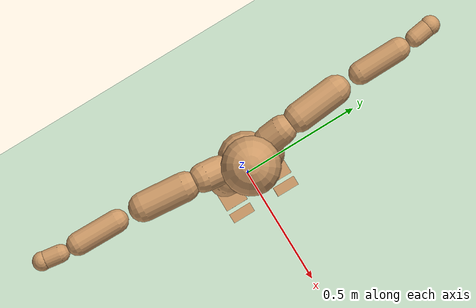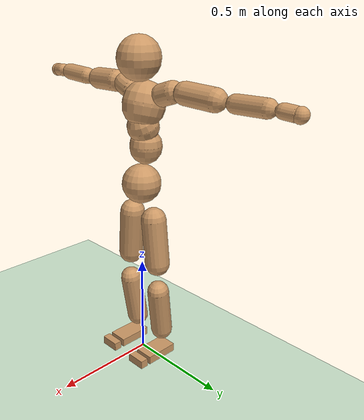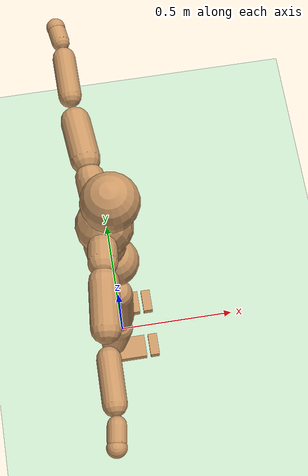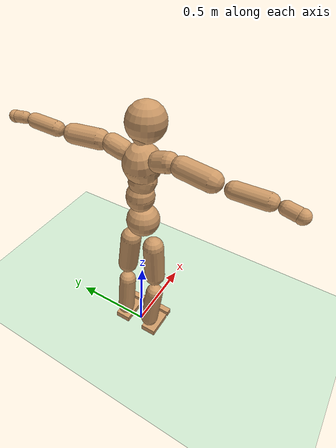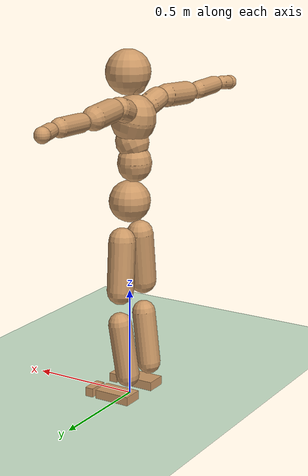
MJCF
<mujoco model="humanoid">
  <compiler coordinate="local" inertiafromgeom="true" angle="degree"/>
  <statistic extent="2" center="0 0 1"/>
  <option timestep="0.003"/>

  <custom>
        <numeric data="2500" name="constraint_limit_stiffness"/>
        <numeric data="27000" name="constraint_stiffness"/>
        <numeric data="30" name="constraint_ang_damping"/>
        <numeric data="80" name="constraint_vel_damping"/>
        <numeric data="-0.05" name="ang_damping"/>
        <numeric data="0.5" name="joint_scale_pos"/>
        <numeric data="0.1" name="joint_scale_ang"/>
        <numeric data="0" name="spring_mass_scale"/>
        <numeric data="1" name="spring_inertia_scale"/>
        <numeric data="10" name="matrix_inv_iterations"/>
        <numeric data="15" name="solver_maxls"/>
    </custom>

  <default>
    <geom condim="3" material="geom" friction="1.0 0.05 0.05" solimp=".9 .99 .003" solref=".02 1" density="1000"/>
    <joint type="hinge" damping="6" stiffness="10" armature=".007" limited="true" solimplimit="0 .99 .01"/>
    <site size=".04" group="3"/>
    <default class="force-torque">
      <site type="box" size=".01 .01 .02" rgba="1 0 0 1"/>
    </default>
    <default class="touch">
      <site type="capsule" rgba="0 0 1 .3"/>
    </default>
  </default>
  <asset>
    <texture type="skybox" builtin="gradient" rgb1=".4 .5 .6" rgb2="0 0 0" width="100" height="100"/>
    <texture builtin="flat" height="1278" mark="cross" markrgb="1 1 1" name="texgeom" random="0.01" rgb1="0.8 0.6 0.4" rgb2="0.8 0.6 0.4" type="cube" width="127"/>
    <texture builtin="checker" height="100" name="texplane" rgb1="0 0 0" rgb2="0.8 0.8 0.8" type="2d" width="100"/>
    <material name="MatPlane" reflectance="0.5" shininess="1" specular="1" texrepeat="60 60" texture="texplane"/>
    <material name="geom" texture="texgeom" texuniform="true"/>
  </asset>
  <worldbody>
    <light cutoff="100" diffuse="1 1 1" dir="0 0 -0.1" directional="true" exponent="1" pos="0 0 10" specular=".1 .1 .1"/>
    <geom conaffinity="1" condim="3" name="floor" pos="0 0 0" rgba="0.8 0.9 0.8 1" size="100 100 .2" type="plane" material="MatPlane"/>
    <body name="Pelvis" pos="0 0 0.920">
      <freejoint name="Pelvis"/>
      <geom type="sphere" size="0.0942" pos="0.0000 0.0000 0.0000" contype="1" conaffinity="0"/>
      <body name="L_Hip" pos="-0.00555 0.0686 -0.09095">
        <joint name="L_Hip_x" type="hinge" pos="0 0 0" axis="1 0 0" armature="0.02" range="-90.0000 90.0000" stiffness="100"/>
        <joint name="L_Hip_y" type="hinge" pos="0 0 0" axis="0 1 0" armature="0.02" range="-90.0000 90.0000" stiffness="100"/>
        <joint name="L_Hip_z" type="hinge" pos="0 0 0" axis="0 0 1" armature="0.02" range="-90.0000 90.0000" stiffness="100"/>
        <geom type="capsule" fromto="-0.00135 0.0073 -0.07575 -0.00535 0.029 -0.30315" size="0.06105" contype="1" conaffinity="0"/>
        <body name="L_Knee" pos="-0.0067 0.0363 -0.3789">
          <joint name="L_Knee_x" type="hinge" pos="0 0 0" axis="1 0 0" armature="0.02" range="-5.6250 5.6250" stiffness="100"/>
          <joint name="L_Knee_y" type="hinge" pos="0 0 0" axis="0 1 0" armature="0.02" range="0.0000 180.0000" stiffness="100"/>
          <joint name="L_Knee_z" type="hinge" pos="0 0 0" axis="0 0 1" armature="0.02" range="-5.6250 5.6250" stiffness="100"/>
          <geom type="capsule" fromto="0.0001 -0.00295 -0.07965 -0.0344 -0.01175 -0.31855" size="0.0541" contype="1" conaffinity="0"/>
          <body name="L_Ankle" pos="-0.043 -0.0147 -0.3982">
            <joint name="L_Ankle_x" type="hinge" pos="0 0 0" axis="1 0 0" armature="0.02" range="-45.0000 45.0000" stiffness="100"/>
            <joint name="L_Ankle_y" type="hinge" pos="0 0 0" axis="0 1 0" armature="0.02" range="-90.0000 90.0000" stiffness="100"/>
            <joint name="L_Ankle_z" type="hinge" pos="0 0 0" axis="0 0 1" armature="0.02" range="-45.0000 45.0000" stiffness="100"/>
            <geom type="box" pos="0.06065 0.01295 -0.0260" size="0.08575 0.0483 0.0208" quat="1.0000 0.0000 0.0000 0.0000" contype="1" conaffinity="0"/>
            <body name="L_Toe" pos="0.1213 0.0259 -0.05195">
              <joint name="L_Toe_x" type="hinge" pos="0 0 0" axis="1 0 0" armature="0.02" range="-180.0000 180.0000" stiffness="100"/>
              <joint name="L_Toe_y" type="hinge" pos="0 0 0" axis="0 1 0" armature="0.02" range="-180.0000 180.0000" stiffness="100"/>
              <joint name="L_Toe_z" type="hinge" pos="0 0 0" axis="0 0 1" armature="0.02" range="-180.0000 180.0000" stiffness="100"/>
              <geom type="box" pos="0.06165 -0.01295 0.02595" size="0.01985 0.04785 0.0208" quat="1.0000 0.0000 0.0000 0.0000" contype="1" conaffinity="0"/>
            </body>
          </body>
        </body>
      </body>
      <body name="R_Hip" pos="-0.00555 -0.0686 -0.09095">
        <joint name="R_Hip_x" type="hinge" pos="0 0 0" axis="1 0 0" armature="0.02" range="-90.0000 90.0000" stiffness="100"/>
        <joint name="R_Hip_y" type="hinge" pos="0 0 0" axis="0 1 0" armature="0.02" range="-90.0000 90.0000" stiffness="100"/>
        <joint name="R_Hip_z" type="hinge" pos="0 0 0" axis="0 0 1" armature="0.02" range="-90.0000 90.0000" stiffness="100"/>
        <geom type="capsule" fromto="-0.00135 -0.0073 -0.07575 -0.00535 -0.029 -0.30315" size="0.06105" contype="1" conaffinity="0"/>
        <body name="R_Knee" pos="-0.0067 -0.0363 -0.3789">
          <joint name="R_Knee_x" type="hinge" pos="0 0 0" axis="1 0 0" armature="0.02" range="-5.6250 5.6250" stiffness="100"/>
          <joint name="R_Knee_y" type="hinge" pos="0 0 0" axis="0 1 0" armature="0.02" range="0.0000 180.0000" stiffness="100"/>
          <joint name="R_Knee_z" type="hinge" pos="0 0 0" axis="0 0 1" armature="0.02" range="-5.6250 5.6250" stiffness="100"/>
          <geom type="capsule" fromto="0.0001 0.00295 -0.07965 -0.0344 0.01175 -0.31855" size="0.0541" contype="1" conaffinity="0"/>
          <body name="R_Ankle" pos="-0.043 0.0147 -0.3982">
            <joint name="R_Ankle_x" type="hinge" pos="0 0 0" axis="1 0 0" armature="0.02" range="-45.0000 45.0000" stiffness="100"/>
            <joint name="R_Ankle_y" type="hinge" pos="0 0 0" axis="0 1 0" armature="0.02" range="-90.0000 90.0000" stiffness="100"/>
            <joint name="R_Ankle_z" type="hinge" pos="0 0 0" axis="0 0 1" armature="0.02" range="-45.0000 45.0000" stiffness="100"/>
            <geom type="box" pos="0.06065 -0.01295 -0.0260" size="0.08575 0.0483 0.0208" quat="1.0000 0.0000 0.0000 0.0000" contype="1" conaffinity="0"/>
            <body name="R_Toe" pos="0.1213 -0.0259 -0.05195">
              <joint name="R_Toe_x" type="hinge" pos="0 0 0" axis="1 0 0" armature="0.02" range="-180.0000 180.0000" stiffness="100"/>
              <joint name="R_Toe_y" type="hinge" pos="0 0 0" axis="0 1 0" armature="0.02" range="-180.0000 180.0000" stiffness="100"/>
              <joint name="R_Toe_z" type="hinge" pos="0 0 0" axis="0 0 1" armature="0.02" range="-180.0000 180.0000" stiffness="100"/>
              <geom type="box" pos="0.06165 0.01295 0.02595" size="0.01985 0.04785 0.0208" quat="1.0000 0.0000 0.0000 0.0000" contype="1" conaffinity="0"/>
            </body>
          </body>
        </body>
      </body>
      <body name="Torso" pos="-0.0267 0.0 0.109">
        <camera name="track" mode="trackcom" pos="0 -4 0" xyaxes="1 0 0 0 0 1"/>
        <camera name="track2" mode="trackcom" pos="4 0 0" xyaxes="0 1 0 0 0 1"/>
        <joint name="Torso_x" type="hinge" pos="0 0 0" axis="1 0 0" armature="0.02" range="-60.0000 60.0000" damping="10" stiffness="500"/>
        <joint name="Torso_y" type="hinge" pos="0 0 0" axis="0 1 0" armature="0.02" range="-60.0000 60.0000" damping="10" stiffness="500"/>
        <joint name="Torso_z" type="hinge" pos="0 0 0" axis="0 0 1" armature="0.02" range="-60.0000 60.0000" damping="10" stiffness="500"/>
        <geom type="capsule" fromto="0.0 0.0025 0.0608 0.0 0.003 0.0743" size="0.0769" contype="1" conaffinity="0"/>
        <body name="Spine" pos="0.0011 0.0 0.1352">
          <joint name="Spine_x" type="hinge" pos="0 0 0" axis="1 0 0" armature="0.02" range="-60.0000 60.0000" stiffness="500"/>
          <joint name="Spine_y" type="hinge" pos="0 0 0" axis="0 1 0" armature="0.02" range="-60.0000 60.0000" stiffness="500"/>
          <joint name="Spine_z" type="hinge" pos="0 0 0" axis="0 0 1" armature="0.02" range="-60.0000 60.0000" stiffness="500"/>
          <geom type="capsule" fromto="0.0114 0.0 0.0238 0.014 0.0 0.0291" size="0.0755" contype="1" conaffinity="0"/>
          <body name="Chest" pos="0.0254 0.0 0.0529">
            <joint name="Chest_x" type="hinge" pos="0 0 0" axis="1 0 0" armature="0.02" range="-60.0000 60.0000" stiffness="500"/>
            <joint name="Chest_y" type="hinge" pos="0 0 0" axis="0 1 0" armature="0.02" range="-60.0000 60.0000" stiffness="500"/>
            <joint name="Chest_z" type="hinge" pos="0 0 0" axis="0 0 1" armature="0.02" range="-60.0000 60.0000" stiffness="500"/>
            <geom type="capsule" fromto="-0.0173 0.0 0.0682 -0.0212 0.0 0.0833" size="0.1002" contype="1" conaffinity="0"/>
            <body name="Neck" pos="-0.0429 0.0 0.2139">
              <joint name="Neck_x" type="hinge" pos="0 0 0" axis="1 0 0" armature="0.02" range="-5.6250 5.6250" stiffness="100"/>
              <joint name="Neck_y" type="hinge" pos="0 0 0" axis="0 1 0" armature="0.02" range="-90.0000 90.0000" stiffness="100"/>
              <joint name="Neck_z" type="hinge" pos="0 0 0" axis="0 0 1" armature="0.02" range="-90.0000 90.0000" stiffness="100"/>
              <geom type="capsule" fromto="0.0103 0.0 0.013 0.0411 0.0 0.052" size="0.0436" contype="1" conaffinity="0"/>
              <body name="Head" pos="0.0513 0.0 0.065">
                <joint name="Head_x" type="hinge" pos="0 0 0" axis="1 0 0" armature="0.02" range="-5.6250 5.6250" stiffness="100"/>
                <joint name="Head_y" type="hinge" pos="0 0 0" axis="0 1 0" armature="0.02" range="-90.0000 90.0000" stiffness="100"/>
                <joint name="Head_z" type="hinge" pos="0 0 0" axis="0 0 1" armature="0.02" range="-90.0000 90.0000" stiffness="100"/>
                <geom type="sphere" size="0.1011" pos="0.0000 0.0000 0.0000" contype="1" conaffinity="0"/>
              </body>
            </body>
            <body name="L_Thorax" pos="-0.03635 0.0803 0.12025">
              <joint name="L_Thorax_x" type="hinge" pos="0 0 0" axis="1 0 0" armature="0.02" range="-5.6250 5.6250" stiffness="100"/>
              <joint name="L_Thorax_y" type="hinge" pos="0 0 0" axis="0 1 0" armature="0.02" range="-5.6250 5.6250" stiffness="100"/>
              <joint name="L_Thorax_z" type="hinge" pos="0 0 0" axis="0 0 1" armature="0.02" range="-5.6250 5.6250" stiffness="100"/>
              <geom type="capsule" fromto="-0.0018 0.0187 0.0063 -0.0072 0.0748 0.0252" size="0.0516" contype="1" conaffinity="0"/>
              <body name="L_Shoulder" pos="-0.009 0.0935 0.03155">
                <joint name="L_Shoulder_x" type="hinge" pos="0 0 0" axis="1 0 0" armature="0.02" range="-720.0000 720.0000" stiffness="100"/>
                <joint name="L_Shoulder_y" type="hinge" pos="0 0 0" axis="0 1 0" armature="0.02" range="-720.0000 720.0000" stiffness="100"/>
                <joint name="L_Shoulder_z" type="hinge" pos="0 0 0" axis="0 0 1" armature="0.02" range="-720.0000 720.0000" stiffness="100"/>
                <geom type="capsule" fromto="-0.0049 0.0513 -0.00265 -0.01955 0.20535 -0.01045" size="0.0524" contype="1" conaffinity="0"/>
                <body name="L_Elbow" pos="-0.02445 0.25665 -0.01305">
                  <joint name="L_Elbow_x" type="hinge" pos="0 0 0" axis="1 0 0" armature="0.02" range="-5.6250 5.6250" stiffness="100"/>
                  <joint name="L_Elbow_y" type="hinge" pos="0 0 0" axis="0 1 0" armature="0.02" range="-5.6250 5.6250" stiffness="100"/>
                  <joint name="L_Elbow_z" type="hinge" pos="0 0 0" axis="0 0 1" armature="0.02" range="-180.0000 0.0000" stiffness="100"/>
                  <geom type="capsule" fromto="-0.00065 0.05045 0.0017 -0.00265 0.2018 0.0067" size="0.04065" contype="1" conaffinity="0"/>
                  <body name="L_Wrist" pos="-0.0034 0.25225 0.0084">
                    <joint name="L_Wrist_x" type="hinge" pos="0 0 0" axis="1 0 0" armature="0.02" range="-180.0000 180.0000" stiffness="100"/>
                    <joint name="L_Wrist_y" type="hinge" pos="0 0 0" axis="0 1 0" armature="0.02" range="-180.0000 180.0000" stiffness="100"/>
                    <joint name="L_Wrist_z" type="hinge" pos="0 0 0" axis="0 0 1" armature="0.02" range="-180.0000 180.0000" stiffness="100"/>
                    <geom type="capsule" fromto="-0.00255 0.01685 -0.0014 -0.01015 0.06745 -0.0057" size="0.0322" contype="1" conaffinity="0"/>
                    <body name="L_Hand" pos="-0.0126 0.0843 -0.00715">
                      <joint name="L_Hand_x" type="hinge" pos="0 0 0" axis="1 0 0" armature="0.02" range="-180.0000 180.0000" stiffness="100"/>
                      <joint name="L_Hand_y" type="hinge" pos="0 0 0" axis="0 1 0" armature="0.02" range="-180.0000 180.0000" stiffness="100"/>
                      <joint name="L_Hand_z" type="hinge" pos="0 0 0" axis="0 0 1" armature="0.02" range="-180.0000 180.0000" stiffness="100"/>
                      <geom type="sphere" size="0.03385" pos="0.0000 0.0000 0.0000" contype="1" conaffinity="0"/>
                    </body>
                  </body>
                </body>
              </body>
            </body>
            <body name="R_Thorax" pos="-0.03635 -0.0803 0.12025">
              <joint name="R_Thorax_x" type="hinge" pos="0 0 0" axis="1 0 0" armature="0.02" range="-5.6250 5.6250" stiffness="100"/>
              <joint name="R_Thorax_y" type="hinge" pos="0 0 0" axis="0 1 0" armature="0.02" range="-5.6250 5.6250" stiffness="100"/>
              <joint name="R_Thorax_z" type="hinge" pos="0 0 0" axis="0 0 1" armature="0.02" range="-5.6250 5.6250" stiffness="100"/>
              <geom type="capsule" fromto="-0.0018 -0.0187 0.0063 -0.0072 -0.0748 0.0252" size="0.0516" contype="1" conaffinity="0"/>
              <body name="R_Shoulder" pos="-0.009 -0.0935 0.03155">
                <joint name="R_Shoulder_x" type="hinge" pos="0 0 0" axis="1 0 0" armature="0.02" range="-720.0000 720.0000" stiffness="100"/>
                <joint name="R_Shoulder_y" type="hinge" pos="0 0 0" axis="0 1 0" armature="0.02" range="-720.0000 720.0000" stiffness="100"/>
                <joint name="R_Shoulder_z" type="hinge" pos="0 0 0" axis="0 0 1" armature="0.02" range="-720.0000 720.0000" stiffness="100"/>
                <geom type="capsule" fromto="-0.0049 -0.0513 -0.00265 -0.01955 -0.20535 -0.01045" size="0.0524" contype="1" conaffinity="0"/>
                <body name="R_Elbow" pos="-0.02445 -0.25665 -0.01305">
                  <joint name="R_Elbow_x" type="hinge" pos="0 0 0" axis="1 0 0" armature="0.02" range="-5.6250 5.6250" stiffness="100"/>
                  <joint name="R_Elbow_y" type="hinge" pos="0 0 0" axis="0 1 0" armature="0.02" range="-5.6250 5.6250" stiffness="100"/>
                  <joint name="R_Elbow_z" type="hinge" pos="0 0 0" axis="0 0 1" armature="0.02" range="0.0000 180.0000" stiffness="100"/>
                  <geom type="capsule" fromto="-0.00065 -0.05045 0.0017 -0.00265 -0.2018 0.0067" size="0.04065" contype="1" conaffinity="0"/>
                  <body name="R_Wrist" pos="-0.0034 -0.25225 0.0084">
                    <joint name="R_Wrist_x" type="hinge" pos="0 0 0" axis="1 0 0" armature="0.02" range="-180.0000 180.0000" stiffness="100"/>
                    <joint name="R_Wrist_y" type="hinge" pos="0 0 0" axis="0 1 0" armature="0.02" range="-180.0000 180.0000" stiffness="100"/>
                    <joint name="R_Wrist_z" type="hinge" pos="0 0 0" axis="0 0 1" armature="0.02" range="-180.0000 180.0000" stiffness="100"/>
                    <geom type="capsule" fromto="-0.00255 -0.01685 -0.0014 -0.01015 -0.06745 -0.0057" size="0.0322" contype="1" conaffinity="0"/>
                   <body name="R_Hand" pos="-0.0126 -0.0843 -0.00715">
                       <joint name="R_Hand_x" type="hinge" pos="0 0 0" axis="1 0 0" armature="0.02" range="-180.0000 180.0000" stiffness="100"/>
                      <joint name="R_Hand_y" type="hinge" pos="0 0 0" axis="0 1 0" armature="0.02" range="-180.0000 180.0000" stiffness="100"/>
                      <joint name="R_Hand_z" type="hinge" pos="0 0 0" axis="0 0 1" armature="0.02" range="-180.0000 180.0000" stiffness="100"/>
                      <geom type="sphere" size="0.03385" pos="0.0000 0.0000 0.0000" contype="1" conaffinity="0"/>
                    </body>
                  </body>
                </body>
              </body>
            </body>
          </body>
        </body>
      </body>
    </body>
  </worldbody>
  <actuator>
    <motor name="L_Hip_x" joint="L_Hip_x" gear="1"/>
    <motor name="L_Hip_y" joint="L_Hip_y" gear="1"/>
    <motor name="L_Hip_z" joint="L_Hip_z" gear="1"/>
    <motor name="L_Knee_x" joint="L_Knee_x" gear="1"/>
    <motor name="L_Knee_y" joint="L_Knee_y" gear="1"/>
    <motor name="L_Knee_z" joint="L_Knee_z" gear="1"/>
    <motor name="L_Ankle_x" joint="L_Ankle_x" gear="1"/>
    <motor name="L_Ankle_y" joint="L_Ankle_y" gear="1"/>
    <motor name="L_Ankle_z" joint="L_Ankle_z" gear="1"/>
    <motor name="L_Toe_x" joint="L_Toe_x" gear="1"/>
    <motor name="L_Toe_y" joint="L_Toe_y" gear="1"/>
    <motor name="L_Toe_z" joint="L_Toe_z" gear="1"/>
    <motor name="R_Hip_x" joint="R_Hip_x" gear="1"/>
    <motor name="R_Hip_y" joint="R_Hip_y" gear="1"/>
    <motor name="R_Hip_z" joint="R_Hip_z" gear="1"/>
    <motor name="R_Knee_x" joint="R_Knee_x" gear="1"/>
    <motor name="R_Knee_y" joint="R_Knee_y" gear="1"/>
    <motor name="R_Knee_z" joint="R_Knee_z" gear="1"/>
    <motor name="R_Ankle_x" joint="R_Ankle_x" gear="1"/>
    <motor name="R_Ankle_y" joint="R_Ankle_y" gear="1"/>
    <motor name="R_Ankle_z" joint="R_Ankle_z" gear="1"/>
    <motor name="R_Toe_x" joint="R_Toe_x" gear="1"/>
    <motor name="R_Toe_y" joint="R_Toe_y" gear="1"/>
    <motor name="R_Toe_z" joint="R_Toe_z" gear="1"/>
    <motor name="Torso_x" joint="Torso_x" gear="1"/>
    <motor name="Torso_y" joint="Torso_y" gear="1"/>
    <motor name="Torso_z" joint="Torso_z" gear="1"/>
    <motor name="Spine_x" joint="Spine_x" gear="1"/>
    <motor name="Spine_y" joint="Spine_y" gear="1"/>
    <motor name="Spine_z" joint="Spine_z" gear="1"/>
    <motor name="Chest_x" joint="Chest_x" gear="1"/>
    <motor name="Chest_y" joint="Chest_y" gear="1"/>
    <motor name="Chest_z" joint="Chest_z" gear="1"/>
    <motor name="Neck_x" joint="Neck_x" gear="1"/>
    <motor name="Neck_y" joint="Neck_y" gear="1"/>
    <motor name="Neck_z" joint="Neck_z" gear="1"/>
    <motor name="Head_x" joint="Head_x" gear="1"/>
    <motor name="Head_y" joint="Head_y" gear="1"/>
    <motor name="Head_z" joint="Head_z" gear="1"/>
    <motor name="L_Thorax_x" joint="L_Thorax_x" gear="1"/>
    <motor name="L_Thorax_y" joint="L_Thorax_y" gear="1"/>
    <motor name="L_Thorax_z" joint="L_Thorax_z" gear="1"/>
    <motor name="L_Shoulder_x" joint="L_Shoulder_x" gear="1"/>
    <motor name="L_Shoulder_y" joint="L_Shoulder_y" gear="1"/>
    <motor name="L_Shoulder_z" joint="L_Shoulder_z" gear="1"/>
    <motor name="L_Elbow_x" joint="L_Elbow_x" gear="1"/>
    <motor name="L_Elbow_y" joint="L_Elbow_y" gear="1"/>
    <motor name="L_Elbow_z" joint="L_Elbow_z" gear="1"/>
    <motor name="L_Wrist_x" joint="L_Wrist_x" gear="1"/>
    <motor name="L_Wrist_y" joint="L_Wrist_y" gear="1"/>
    <motor name="L_Wrist_z" joint="L_Wrist_z" gear="1"/>
    <motor name="L_Hand_x" joint="L_Hand_x" gear="1"/>
    <motor name="L_Hand_y" joint="L_Hand_y" gear="1"/>
    <motor name="L_Hand_z" joint="L_Hand_z" gear="1"/>
    <motor name="R_Thorax_x" joint="R_Thorax_x" gear="1"/>
    <motor name="R_Thorax_y" joint="R_Thorax_y" gear="1"/>
    <motor name="R_Thorax_z" joint="R_Thorax_z" gear="1"/>
    <motor name="R_Shoulder_x" joint="R_Shoulder_x" gear="1"/>
    <motor name="R_Shoulder_y" joint="R_Shoulder_y" gear="1"/>
    <motor name="R_Shoulder_z" joint="R_Shoulder_z" gear="1"/>
    <motor name="R_Elbow_x" joint="R_Elbow_x" gear="1"/>
    <motor name="R_Elbow_y" joint="R_Elbow_y" gear="1"/>
    <motor name="R_Elbow_z" joint="R_Elbow_z" gear="1"/>
    <motor name="R_Wrist_x" joint="R_Wrist_x" gear="1"/>
    <motor name="R_Wrist_y" joint="R_Wrist_y" gear="1"/>
    <motor name="R_Wrist_z" joint="R_Wrist_z" gear="1"/>
    <motor name="R_Hand_x" joint="R_Hand_x" gear="1"/>
    <motor name="R_Hand_y" joint="R_Hand_y" gear="1"/>
    <motor name="R_Hand_z" joint="R_Hand_z" gear="1"/>
  </actuator>
  <sensor>
    <framepos name="Pelvis_pos" objtype="xbody" objname="Pelvis"/>
    <framepos name="L_Hip_pos" objtype="xbody" objname="L_Hip"/>
    <framepos name="L_Knee_pos" objtype="xbody" objname="L_Knee"/>
    <framepos name="L_Ankle_pos" objtype="xbody" objname="L_Ankle"/>
    <framepos name="L_Toe_pos" objtype="xbody" objname="L_Toe"/>
    <framepos name="R_Hip_pos" objtype="xbody" objname="R_Hip"/>
    <framepos name="R_Knee_pos" objtype="xbody" objname="R_Knee"/>
    <framepos name="R_Ankle_pos" objtype="xbody" objname="R_Ankle"/>
    <framepos name="R_Toe_pos" objtype="xbody" objname="R_Toe"/>
    <framepos name="Torso_pos" objtype="xbody" objname="Torso"/>
    <framepos name="Spine_pos" objtype="xbody" objname="Spine"/>
    <framepos name="Chest_pos" objtype="xbody" objname="Chest"/>
    <framepos name="Neck_pos" objtype="xbody" objname="Neck"/>
    <framepos name="Head_pos" objtype="xbody" objname="Head"/>
    <framepos name="L_Thorax_pos" objtype="xbody" objname="L_Thorax"/>
    <framepos name="L_Shoulder_pos" objtype="xbody" objname="L_Shoulder"/>
    <framepos name="L_Elbow_pos" objtype="xbody" objname="L_Elbow"/>
    <framepos name="L_Wrist_pos" objtype="xbody" objname="L_Wrist"/>
    <framepos name="L_Hand_pos" objtype="xbody" objname="L_Hand"/>
    <framepos name="R_Thorax_pos" objtype="xbody" objname="R_Thorax"/>
    <framepos name="R_Shoulder_pos" objtype="xbody" objname="R_Shoulder"/>
    <framepos name="R_Elbow_pos" objtype="xbody" objname="R_Elbow"/>
    <framepos name="R_Wrist_pos" objtype="xbody" objname="R_Wrist"/>
    <framepos name="R_Hand_pos" objtype="xbody" objname="R_Hand"/>

    <framelinvel name="Pelvis_vel" objtype="xbody" objname="Pelvis"/>
    <framelinvel name="L_Hip_vel" objtype="xbody" objname="L_Hip"/>
    <framelinvel name="L_Knee_vel" objtype="xbody" objname="L_Knee"/>
    <framelinvel name="L_Ankle_vel" objtype="xbody" objname="L_Ankle"/>
    <framelinvel name="L_Toe_vel" objtype="xbody" objname="L_Toe"/>
    <framelinvel name="R_Hip_vel" objtype="xbody" objname="R_Hip"/>
    <framelinvel name="R_Knee_vel" objtype="xbody" objname="R_Knee"/>
    <framelinvel name="R_Ankle_vel" objtype="xbody" objname="R_Ankle"/>
    <framelinvel name="R_Toe_vel" objtype="xbody" objname="R_Toe"/>
    <framelinvel name="Torso_vel" objtype="xbody" objname="Torso"/>
    <framelinvel name="Spine_vel" objtype="xbody" objname="Spine"/>
    <framelinvel name="Chest_vel" objtype="xbody" objname="Chest"/>
    <framelinvel name="Neck_vel" objtype="xbody" objname="Neck"/>
    <framelinvel name="Head_vel" objtype="xbody" objname="Head"/>
    <framelinvel name="L_Thorax_vel" objtype="xbody" objname="L_Thorax"/>
    <framelinvel name="L_Shoulder_vel" objtype="xbody" objname="L_Shoulder"/>
    <framelinvel name="L_Elbow_vel" objtype="xbody" objname="L_Elbow"/>
    <framelinvel name="L_Wrist_vel" objtype="xbody" objname="L_Wrist"/>
    <framelinvel name="L_Hand_vel" objtype="xbody" objname="L_Hand"/>
    <framelinvel name="R_Thorax_vel" objtype="xbody" objname="R_Thorax"/>
    <framelinvel name="R_Shoulder_vel" objtype="xbody" objname="R_Shoulder"/>
    <framelinvel name="R_Elbow_vel" objtype="xbody" objname="R_Elbow"/>
    <framelinvel name="R_Wrist_vel" objtype="xbody" objname="R_Wrist"/>
    <framelinvel name="R_Hand_vel" objtype="xbody" objname="R_Hand"/>

  </sensor>
  <contact/>
  <size njmax="700" nconmax="700"/>
</mujoco>
